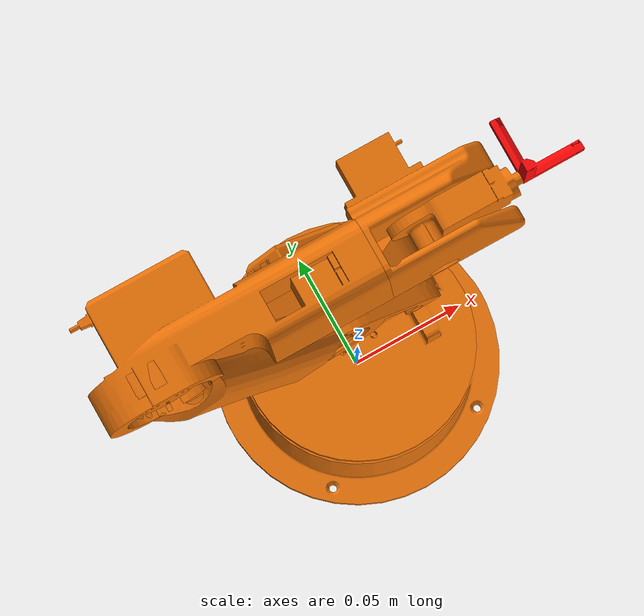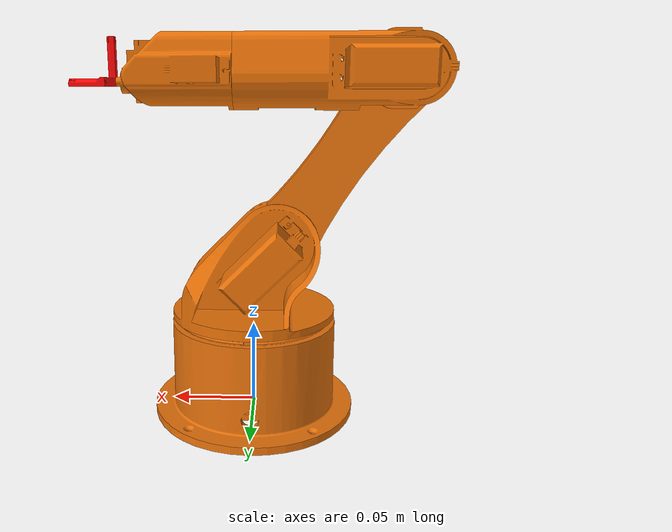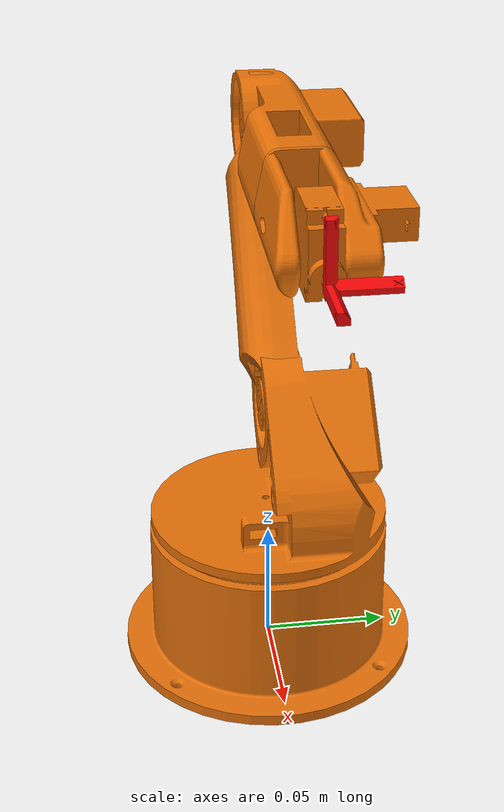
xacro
<?xml version="1.0"?>
<robot xmlns:xacro="http://www.ros.org/wiki/xacro" name="Drago">
    <xacro:arg name="initial_positions_file" default="initial_positions.yaml" />

    <!-- Import Drago urdf file -->
    <xacro:include filename="$(find drago_pkg)/urdf/drago.urdf" />

    <!-- Import control_xacro -->
    <xacro:include filename="Drago.ros2_control.xacro" />

    <xacro:Drago_ros2_control name="DragoSystem" initial_positions_file="$(arg initial_positions_file)"/>

</robot>

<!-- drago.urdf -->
<robot
  name="Drago">
  <link
    name="base_link">
    <inertial>
      <origin
        xyz="-3.17939775335685E-08 -0.00264994119849839 0.024520116544489"
        rpy="0 0 0" />
      <mass
        value="0.150185390114133" />
      <inertia
        ixx="0.000168237215192189"
        ixy="-4.1193940307426E-11"
        ixz="4.55755042083359E-11"
        iyy="0.000154817201119742"
        iyz="3.91097259857606E-06"
        izz="0.000251145547154156" />
    </inertial>
    <visual>
      <origin
        xyz="0 0 0"
        rpy="0 0 0" />
      <geometry>
        <mesh
          filename="package://drago_pkg/meshes/base_link.STL" />
      </geometry>
      <material
        name="">
        <color
          rgba="0.909803921568627 0.447058823529412 0.0431372549019608 1" />
      </material>
    </visual>
    <collision>
      <origin
        xyz="0 0 0"
        rpy="0 0 0" />
      <geometry>
        <mesh
          filename="package://drago_pkg/meshes/base_link.STL" />
      </geometry>
    </collision>
  </link>
  <link
    name="Waist_link">
    <inertial>
      <origin
        xyz="-0.000676323173403932 0.0126083773212082 0.0204053116340272"
        rpy="0 0 0" />
      <mass
        value="0.114312274057208" />
      <inertia
        ixx="5.85730201621192E-05"
        ixy="-2.01852917189799E-06"
        ixz="7.34554378804278E-06"
        iyy="7.4949840825555E-05"
        iyz="-3.56787891760963E-06"
        izz="7.44043801409344E-05" />
    </inertial>
    <visual>
      <origin
        xyz="0 0 0"
        rpy="0 0 0" />
      <geometry>
        <mesh
          filename="package://drago_pkg/meshes/Waist_link.STL" />
      </geometry>
      <material
        name="">
        <color
          rgba="0.909803921568627 0.443137254901961 0.0313725490196078 1" />
      </material>
    </visual>
    <collision>
      <origin
        xyz="0 0 0"
        rpy="0 0 0" />
      <geometry>
        <mesh
          filename="package://drago_pkg/meshes/Waist_link.STL" />
      </geometry>
    </collision>
  </link>
  <joint
    name="Waist_joint"
    type="revolute">
    <origin
      xyz="0 0 0.06165"
      rpy="0 0 0" />
    <parent
      link="base_link" />
    <child
      link="Waist_link" />
    <axis
      xyz="0 0 1" />
    <limit
      lower="-1.57"
      upper="1.57"
      effort="1"
      velocity="3" />
    <dynamics
      damping="1"
      friction="1" />
  </joint>
  <link
    name="Shoulder_link">
    <inertial>
      <origin
        xyz="-2.52041920136073E-05 0.0600135143636057 0.019804576428293"
        rpy="0 0 0" />
      <mass
        value="0.0683062909364027" />
      <inertia
        ixx="0.0001113354847057"
        ixy="2.14175645290312E-10"
        ixz="-6.57129254857723E-09"
        iyy="9.89041105147483E-06"
        iyz="-1.38107151450493E-08"
        izz="0.000116571288618766" />
    </inertial>
    <visual>
      <origin
        xyz="0 0 0"
        rpy="0 0 0" />
      <geometry>
        <mesh
          filename="package://drago_pkg/meshes/Shoulder_link.STL" />
      </geometry>
      <material
        name="">
        <color
          rgba="0.909803921568627 0.447058823529412 0.0431372549019608 1" />
      </material>
    </visual>
    <collision>
      <origin
        xyz="0 0 0"
        rpy="0 0 0" />
      <geometry>
        <mesh
          filename="package://drago_pkg/meshes/Shoulder_link.STL" />
      </geometry>
    </collision>
  </link>
  <joint
    name="Shoulder_joint"
    type="revolute">
    <origin
      xyz="-0.0138993282947757 0.0103143963931036 0.04028"
      rpy="1.56990264699179 -0.614305609815112 0.000515109286944776" />
    <parent
      link="Waist_link" />
    <child
      link="Shoulder_link" />
    <axis
      xyz="0.0012670059545015 0 -0.999999197347633" />
    <limit
      lower="-1.31"
      upper="2.5"
      effort="1"
      velocity="3" />
  </joint>
  <link
    name="Elbow_link">
    <inertial>
      <origin
        xyz="0.0355691423861956 -0.000417820683792508 -0.00500607323785878"
        rpy="0 0 0" />
      <mass
        value="0.104178577887407" />
      <inertia
        ixx="1.93592335339553E-05"
        ixy="2.54946103415903E-07"
        ixz="3.93913710148055E-07"
        iyy="7.13397768744526E-05"
        iyz="-1.31077728319941E-08"
        izz="7.20804633552649E-05" />
    </inertial>
    <visual>
      <origin
        xyz="0 0 0"
        rpy="0 0 0" />
      <geometry>
        <mesh
          filename="package://drago_pkg/meshes/Elbow_link.STL" />
      </geometry>
      <material
        name="">
        <color
          rgba="0.909803921568627 0.443137254901961 0.0313725490196078 1" />
      </material>
    </visual>
    <collision>
      <origin
        xyz="0 0 0"
        rpy="0 0 0" />
      <geometry>
        <mesh
          filename="package://drago_pkg/meshes/Elbow_link.STL" />
      </geometry>
    </collision>
  </link>
  <joint
    name="Elbow_joint"
    type="revolute">
    <origin
      xyz="0 0.12 0"
      rpy="0.000730291763721768 0 -0.614305797905159" />
    <parent
      link="Shoulder_link" />
    <child
      link="Elbow_link" />
    <axis
      xyz="0.00103536403989601 0 -0.999999464010509" />
    <limit
      lower="-4"
      upper="0.12"
      effort="1"
      velocity="3" />
  </joint>
  <link
    name="Wrist_1_link">
    <inertial>
      <origin
        xyz="0.00607897954377361 0.00364397902802904 0.0234182353222563"
        rpy="0 0 0" />
      <mass
        value="0.0380971171326554" />
      <inertia
        ixx="1.1860347124032E-05"
        ixy="-2.75536216962121E-08"
        ixz="-4.05594221123261E-07"
        iyy="1.36525245956248E-05"
        iyz="4.79313308370815E-07"
        izz="7.54220734333144E-06" />
    </inertial>
    <visual>
      <origin
        xyz="0 0 0"
        rpy="0 0 0" />
      <geometry>
        <mesh
          filename="package://drago_pkg/meshes/Wrist_1_link.STL" />
      </geometry>
      <material
        name="">
        <color
          rgba="0.909803921568627 0.443137254901961 0.0313725490196078 1" />
      </material>
    </visual>
    <collision>
      <origin
        xyz="0 0 0"
        rpy="0 0 0" />
      <geometry>
        <mesh
          filename="package://drago_pkg/meshes/Wrist_1_link.STL" />
      </geometry>
    </collision>
  </link>
  <joint
    name="Wrist_1_joint"
    type="revolute">
    <origin
      xyz="0.0943999494025927 -0.005 9.77383653464683E-05"
      rpy="0 1.5707963267949 0" />
    <parent
      link="Elbow_link" />
    <child
      link="Wrist_1_link" />
    <axis
      xyz="0.001035364039901 0 -0.999999464010509" />
    <limit
      lower="-1.57"
      upper="1.57"
      effort="1"
      velocity="3" />
  </joint>
  <link
    name="Wrist_2_link">
    <inertial>
      <origin
        xyz="0.0166070440758065 0.000139180486092322 -0.00152313864772932"
        rpy="0 0 0" />
      <mass
        value="0.0143322219516906" />
      <inertia
        ixx="1.20971579960555E-06"
        ixy="-1.20417958057003E-08"
        ixz="-5.41745725198343E-08"
        iyy="1.15223913686393E-06"
        iyz="1.04848328536845E-08"
        izz="1.96703829342423E-06" />
    </inertial>
    <visual>
      <origin
        xyz="0 0 0"
        rpy="0 0 0" />
      <geometry>
        <mesh
          filename="package://drago_pkg/meshes/Wrist_2_link.STL" />
      </geometry>
      <material
        name="">
        <color
          rgba="0.909803921568627 0.443137254901961 0.0313725490196078 1" />
      </material>
    </visual>
    <collision>
      <origin
        xyz="0 0 0"
        rpy="0 0 0" />
      <geometry>
        <mesh
          filename="package://drago_pkg/meshes/Wrist_2_link.STL" />
      </geometry>
    </collision>
  </link>
  <joint
    name="Wrist_2_joint"
    type="revolute">
    <origin
      xyz="-0.0013012254232319 0.0034038765092409 0.0208385964872179"
      rpy="-3.14159265358979 -1.56976096256998 3.14159265358979" />
    <parent
      link="Wrist_1_link" />
    <child
      link="Wrist_2_link" />
    <axis
      xyz="0 0 -1" />
    <limit
      lower="-1.57"
      upper="1.396"
      effort="1"
      velocity="3" />
  </joint>
  <link
    name="Effector_link">
    <inertial>
      <origin
        xyz="0.00778015430289843 0.00364256165738719 -0.00361079517313335"
        rpy="0 0 0" />
      <mass
        value="0.00118783436629656" />
      <inertia
        ixx="1.21592416437205E-07"
        ixy="2.05279534283296E-08"
        ixz="-2.0386676237453E-08"
        iyy="1.21305131169617E-07"
        iyz="-2.04470678584157E-08"
        izz="1.21633378578844E-07" />
    </inertial>
    <visual>
      <origin
        xyz="0 0 0"
        rpy="0 0 0" />
      <geometry>
        <mesh
          filename="package://drago_pkg/meshes/Effector_link.STL" />
      </geometry>
      <material
        name="">
        <color
          rgba="1 0.0274509803921569 0.0274509803921569 1" />
      </material>
    </visual>
    <collision>
      <origin
        xyz="0 0 0"
        rpy="0 0 0" />
      <geometry>
        <mesh
          filename="package://drago_pkg/meshes/Effector_link.STL" />
      </geometry>
    </collision>
  </link>
  <joint
    name="Effector_joint"
    type="revolute">
    <origin
      xyz="0.040844 -0.0051105 -0.0013078"
      rpy="0 0.0010354 0" />
    <parent
      link="Wrist_2_link" />
    <child
      link="Effector_link" />
    <axis
      xyz="1 0 0.0010354" />
    <limit
      lower="-1.57"
      upper="1.57"
      effort="1"
      velocity="3" />
  </joint>
</robot>
